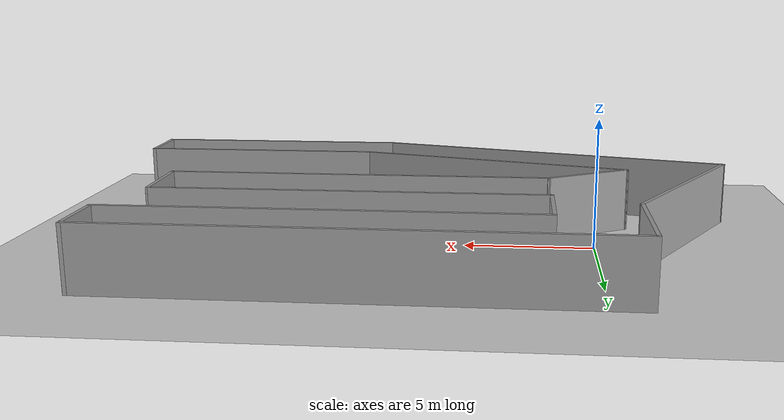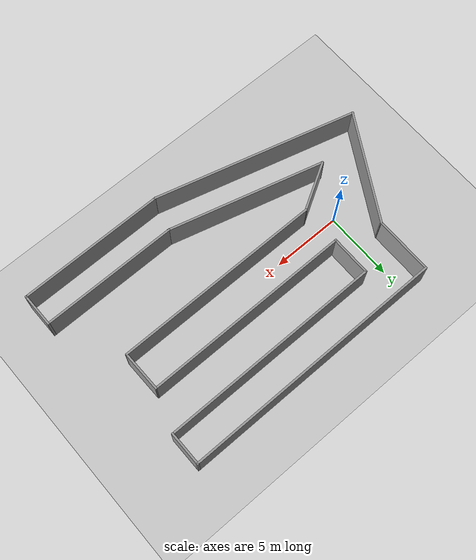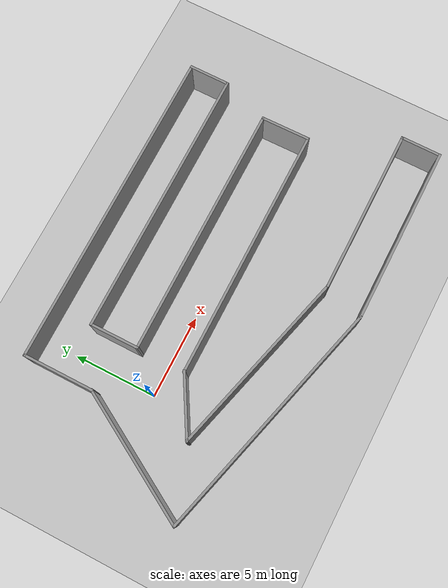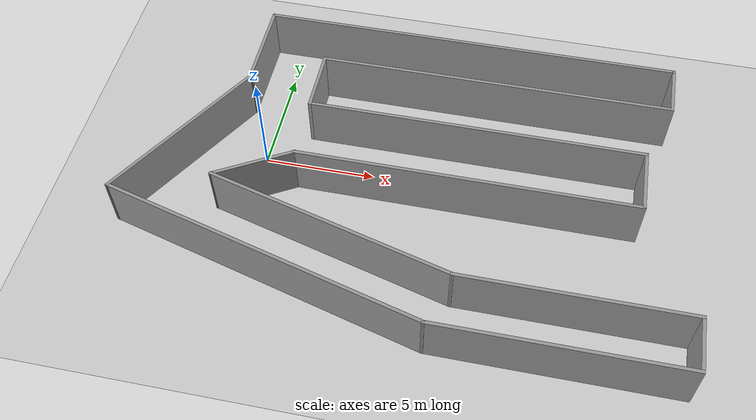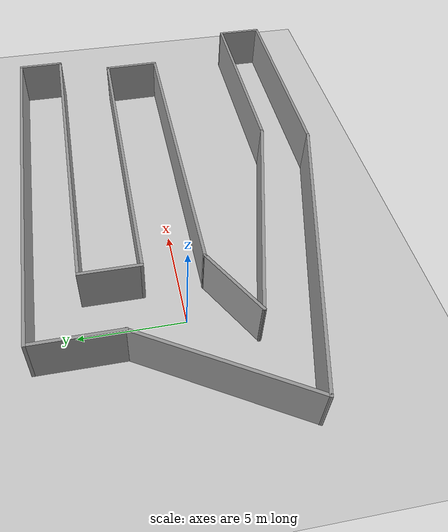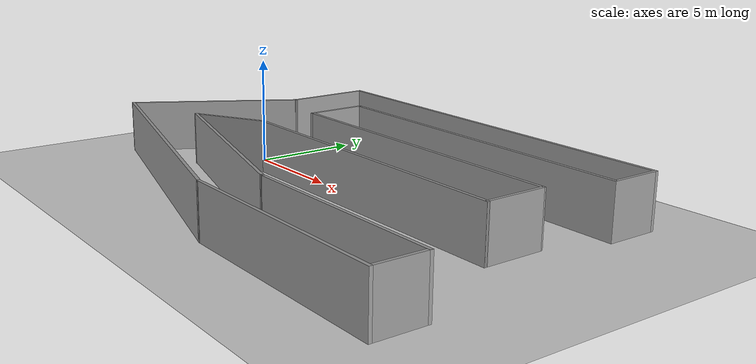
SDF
<sdf version="1.7">
 <world name="default">
  <light name="sun" type="directional">
   <pose>0 0 10 0 -0 0</pose>
   <diffuse>0.8 0.8 0.8 1</diffuse>
   <specular>0.2 0.2 0.2 1</specular>
   <attenuation>
    <range>1000</range>
    <constant>0.9</constant>
    <linear>0.01</linear>
    <quadratic>0.001</quadratic>
   </attenuation>
   <direction>-0.5 0.1 -0.9</direction>
   <spot><inner_angle>0</inner_angle><outer_angle>0</outer_angle><falloff>0</falloff></spot>
  </light>
  <model name="ground_plane">
   <static>1</static>
   <link name="link">
    <collision name="collision">
     <geometry><plane><normal>0 0 1</normal><size>100 100</size></plane></geometry>
     <surface>
      <contact><collide_bitmask>65535</collide_bitmask></contact>
      <friction><ode><mu>100</mu><mu2>50</mu2></ode></friction>
     </surface>
    </collision>
    <visual name="visual">
     <cast_shadows>0</cast_shadows>
     <geometry><plane><normal>0 0 1</normal><size>100 100</size></plane></geometry>
     <material>
      <script><uri>file://media/materials/scripts/gazebo.material</uri><name>Gazebo/Grey</name></script>
     </material>
    </visual>
   </link>
  </model>
  <gravity>0 0 -9.8</gravity>
  <magnetic_field>6e-06 2.3e-05 -4.2e-05</magnetic_field>
  <atmosphere type="adiabatic"/>
  <physics type="ode">
   <max_step_size>0.005</max_step_size>
   <real_time_factor>1</real_time_factor>
   <real_time_update_rate>1000</real_time_update_rate>
  </physics>
  <scene><ambient>0.4 0.4 0.4 1</ambient><background>0.7 0.7 0.7 1</background><shadows>1</shadows></scene>
  <audio><device>default</device></audio>
  <spherical_coordinates>
   <surface_model>EARTH_WGS84</surface_model>
   <latitude_deg>0</latitude_deg>
   <longitude_deg>0</longitude_deg>
   <elevation>0</elevation>
   <heading_deg>0</heading_deg>
  </spherical_coordinates>
  <model name="Untitled1">
   <pose>6.9033 -0.693811 0 0 -0 0</pose>
   <link name="Wall_0">
    <collision name="Wall_0_Collision">
     <geometry><box><size>15.25 0.15 2.5</size></box></geometry>
     <pose>0 0 1.25 0 -0 0</pose>
    </collision>
    <visual name="Wall_0_Visual">
     <pose>0 0 1.25 0 -0 0</pose>
     <geometry><box><size>15.25 0.15 2.5</size></box></geometry>
     <material>
      <script><uri>file://media/materials/scripts/gazebo.material</uri><name>Gazebo/Grey</name></script>
      <ambient>1 1 1 1</ambient>
     </material>
     <meta><layer>0</layer></meta>
    </visual>
    <pose>2.42013 -0.45159 0 0 -0 0</pose>
   </link>
   <link name="Wall_1">
    <collision name="Wall_1_Collision">
     <geometry><box><size>2.98003 0.15 2.5</size></box></geometry>
     <pose>0 0 1.25 0 -0 0</pose>
    </collision>
    <visual name="Wall_1_Visual">
     <pose>0 0 1.25 0 -0 0</pose>
     <geometry><box><size>2.98003 0.15 2.5</size></box></geometry>
     <material>
      <script><uri>file://media/materials/scripts/gazebo.material</uri><name>Gazebo/Grey</name></script>
      <ambient>1 1 1 1</ambient>
     </material>
     <meta><layer>0</layer></meta>
    </visual>
    <pose>9.95254 0.998497 0 0 -0 1.58323</pose>
   </link>
   <link name="Wall_10">
    <collision name="Wall_10_Collision">
     <geometry><box><size>8.5 0.15 2.5</size></box></geometry>
     <pose>0 0 1.25 0 -0 0</pose>
    </collision>
    <visual name="Wall_10_Visual">
     <pose>0 0 1.25 0 -0 0</pose>
     <geometry><box><size>8.5 0.15 2.5</size></box></geometry>
     <material>
      <script><uri>file://media/materials/scripts/gazebo.material</uri><name>Gazebo/Grey</name></script>
      <ambient>1 1 1 1</ambient>
     </material>
     <meta><layer>0</layer></meta>
    </visual>
    <pose>-10.3708 -0.13743 0 0 -0 -2.0944</pose>
   </link>
   <link name="Wall_11">
    <collision name="Wall_11_Collision">
     <geometry><box><size>15 0.15 2.5</size></box></geometry>
     <pose>0 0 1.25 0 -0 0</pose>
    </collision>
    <visual name="Wall_11_Visual">
     <pose>0 0 1.25 0 -0 0</pose>
     <geometry><box><size>15 0.15 2.5</size></box></geometry>
     <material>
      <script><uri>file://media/materials/scripts/gazebo.material</uri><name>Gazebo/Grey</name></script>
      <ambient>1 1 1 1</ambient>
     </material>
     <meta><layer>0</layer></meta>
    </visual>
    <pose>-5.28627 -5.67482 0 0 -0 -0.261799</pose>
   </link>
   <link name="Wall_12">
    <collision name="Wall_12_Collision">
     <geometry><box><size>10.75 0.15 2.5</size></box></geometry>
     <pose>0 0 1.25 0 -0 0</pose>
    </collision>
    <visual name="Wall_12_Visual">
     <pose>0 0 1.25 0 -0 0</pose>
     <geometry><box><size>10.75 0.15 2.5</size></box></geometry>
     <material>
      <script><uri>file://media/materials/scripts/gazebo.material</uri><name>Gazebo/Grey</name></script>
      <ambient>1 1 1 1</ambient>
     </material>
     <meta><layer>0</layer></meta>
    </visual>
    <pose>7.18572 -7.59655 0 0 -0 0</pose>
   </link>
   <link name="Wall_13">
    <collision name="Wall_13_Collision">
     <geometry><box><size>2.5 0.15 2.5</size></box></geometry>
     <pose>0 0 1.25 0 -0 0</pose>
    </collision>
    <visual name="Wall_13_Visual">
     <pose>0 0 1.25 0 -0 0</pose>
     <geometry><box><size>2.5 0.15 2.5</size></box></geometry>
     <material>
      <script><uri>file://media/materials/scripts/gazebo.material</uri><name>Gazebo/Grey</name></script>
      <ambient>1 1 1 1</ambient>
     </material>
     <meta><layer>0</layer></meta>
    </visual>
    <pose>12.4857 -6.42155 0 0 -0 1.5708</pose>
   </link>
   <link name="Wall_14">
    <collision name="Wall_14_Collision">
     <geometry><box><size>10 0.15 2.5</size></box></geometry>
     <pose>0 0 1.25 0 -0 0</pose>
    </collision>
    <visual name="Wall_14_Visual">
     <pose>0 0 1.25 0 -0 0</pose>
     <geometry><box><size>10 0.15 2.5</size></box></geometry>
     <material>
      <script><uri>file://media/materials/scripts/gazebo.material</uri><name>Gazebo/Grey</name></script>
      <ambient>1 1 1 1</ambient>
     </material>
     <meta><layer>0</layer></meta>
    </visual>
    <pose>7.56072 -5.24655 0 0 -0 3.14159</pose>
   </link>
   <link name="Wall_15">
    <collision name="Wall_15_Collision">
     <geometry><box><size>11.5 0.15 2.5</size></box></geometry>
     <pose>0 0 1.25 0 -0 0</pose>
    </collision>
    <visual name="Wall_15_Visual">
     <pose>0 0 1.25 0 -0 0</pose>
     <geometry><box><size>11.5 0.15 2.5</size></box></geometry>
     <material>
      <script><uri>file://media/materials/scripts/gazebo.material</uri><name>Gazebo/Grey</name></script>
      <ambient>1 1 1 1</ambient>
     </material>
     <meta><layer>0</layer></meta>
    </visual>
    <pose>-2.8459 -3.77775 0 0 -0 2.87979</pose>
   </link>
   <link name="Wall_16">
    <collision name="Wall_16_Collision">
     <geometry><box><size>3.84795 0.15 2.5</size></box></geometry>
     <pose>0 0 1.25 0 -0 0</pose>
    </collision>
    <visual name="Wall_16_Visual">
     <pose>0 0 1.25 0 -0 0</pose>
     <geometry><box><size>3.84795 0.15 2.5</size></box></geometry>
     <material>
      <script><uri>file://media/materials/scripts/gazebo.material</uri><name>Gazebo/Grey</name></script>
      <ambient>1 1 1 1</ambient>
     </material>
     <meta><layer>0</layer></meta>
    </visual>
    <pose>-6.7287 -1.38027 0 0 -0 0.52622</pose>
   </link>
   <link name="Wall_2">
    <collision name="Wall_2_Collision">
     <geometry><box><size>15.25 0.15 2.5</size></box></geometry>
     <pose>0 0 1.25 0 -0 0</pose>
    </collision>
    <visual name="Wall_2_Visual">
     <pose>0 0 1.25 0 -0 0</pose>
     <geometry><box><size>15.25 0.15 2.5</size></box></geometry>
     <material>
      <script><uri>file://media/materials/scripts/gazebo.material</uri><name>Gazebo/Grey</name></script>
      <ambient>1 1 1 1</ambient>
     </material>
     <meta><layer>0</layer></meta>
    </visual>
    <pose>2.38495 2.4134 0 0 -0 3.14159</pose>
   </link>
   <link name="Wall_3">
    <collision name="Wall_3_Collision">
     <geometry><box><size>3 0.15 2.5</size></box></geometry>
     <pose>0 0 1.25 0 -0 0</pose>
    </collision>
    <visual name="Wall_3_Visual">
     <pose>0 0 1.25 0 -0 0</pose>
     <geometry><box><size>3 0.15 2.5</size></box></geometry>
     <material>
      <script><uri>file://media/materials/scripts/gazebo.material</uri><name>Gazebo/Grey</name></script>
      <ambient>1 1 1 1</ambient>
     </material>
     <meta><layer>0</layer></meta>
    </visual>
    <pose>-5.16505 3.8384 0 0 -0 1.5708</pose>
   </link>
   <link name="Wall_4">
    <collision name="Wall_4_Collision">
     <geometry><box><size>16.25 0.15 2.5</size></box></geometry>
     <pose>0 0 1.25 0 -0 0</pose>
    </collision>
    <visual name="Wall_4_Visual">
     <pose>0 0 1.25 0 -0 0</pose>
     <geometry><box><size>16.25 0.15 2.5</size></box></geometry>
     <material>
      <script><uri>file://media/materials/scripts/gazebo.material</uri><name>Gazebo/Grey</name></script>
      <ambient>1 1 1 1</ambient>
     </material>
     <meta><layer>0</layer></meta>
    </visual>
    <pose>2.88495 5.2634 0 0 -0 0</pose>
   </link>
   <link name="Wall_5">
    <collision name="Wall_5_Collision">
     <geometry><box><size>2.5 0.15 2.5</size></box></geometry>
     <pose>0 0 1.25 0 -0 0</pose>
    </collision>
    <visual name="Wall_5_Visual">
     <pose>0 0 1.25 0 -0 0</pose>
     <geometry><box><size>2.5 0.15 2.5</size></box></geometry>
     <material>
      <script><uri>file://media/materials/scripts/gazebo.material</uri><name>Gazebo/Grey</name></script>
      <ambient>1 1 1 1</ambient>
     </material>
     <meta><layer>0</layer></meta>
    </visual>
    <pose>10.935 6.43841 0 0 -0 1.5708</pose>
   </link>
   <link name="Wall_6">
    <collision name="Wall_6_Collision">
     <geometry><box><size>19.369 0.15 2.5</size></box></geometry>
     <pose>0 0 1.25 0 -0 0</pose>
    </collision>
    <visual name="Wall_6_Visual">
     <pose>0 0 1.25 0 -0 0</pose>
     <geometry><box><size>19.369 0.15 2.5</size></box></geometry>
     <material>
      <script><uri>file://media/materials/scripts/gazebo.material</uri><name>Gazebo/Grey</name></script>
      <ambient>1 1 1 1</ambient>
     </material>
     <meta><layer>0</layer></meta>
    </visual>
    <pose>1.32584 7.61341 0 0 -0 3.14159</pose>
   </link>
   <link name="Wall_7">
    <collision name="Wall_7_Collision">
     <geometry><box><size>4.25 0.15 2.5</size></box></geometry>
     <pose>0 0 1.25 0 -0 0</pose>
    </collision>
    <visual name="Wall_7_Visual">
     <pose>0 0 1.25 0 -0 0</pose>
     <geometry><box><size>4.25 0.15 2.5</size></box></geometry>
     <material>
      <script><uri>file://media/materials/scripts/gazebo.material</uri><name>Gazebo/Grey</name></script>
      <ambient>1 1 1 1</ambient>
     </material>
     <meta><layer>0</layer></meta>
    </visual>
    <pose>-8.28327 5.52823 0 0 -0 -1.5708</pose>
   </link>
   <static>1</static>
  </model>
 </world>
</sdf>
